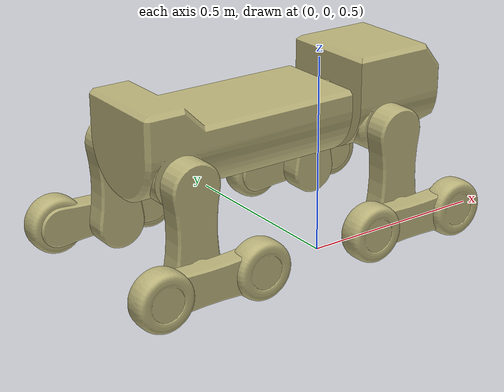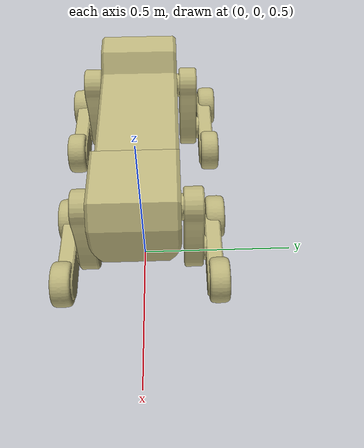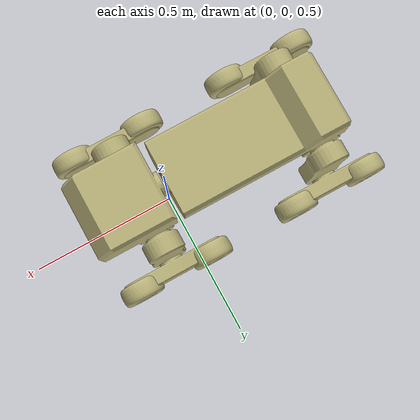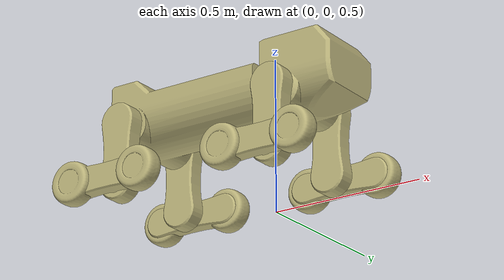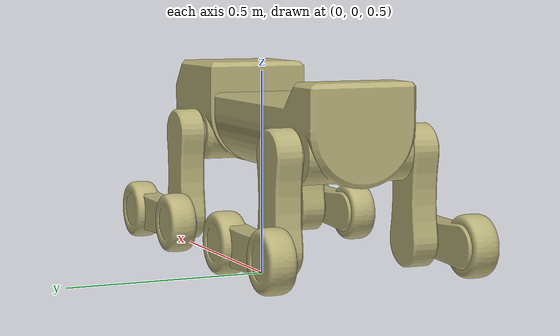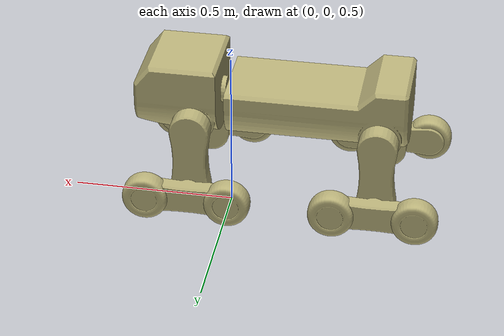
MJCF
<mujoco model="walter">

    <!--Defining the assets for the model-->
  <asset>
    <texture type="skybox" builtin="gradient" rgb1="1 1 1" rgb2=".63 .8 1" width="256" height="256"/>
    <mesh name = "thigh_mesh" file = "assets/Thigh.stl"/>
    <mesh name = "shin_mesh" file = "assets/Shin.stl"/>
    <mesh name = "wheel_mesh" file = "assets/Wheel.stl"/>
    <mesh name = "body_mesh" file = "assets/Body.stl"/>
    <mesh name = "head_mesh" file = "assets/Head.stl"/>
  </asset>

  <!--Defining default classes for components-->
  <default>
    <geom rgba="0.73 0.7 0.48 1"/>
    <!-- Default thigh class -->
    <default class="thigh">
        <geom type="mesh" mesh="thigh_mesh" mass = "3" />
    </default>

    <!-- Default hip class -->
    <default class = "hip">
        <joint armature = "0.02" damping = "2"/>
    </default>

    <!-- Default shin class -->
    <default class="shin">
        <geom type="mesh" mesh="shin_mesh" mass = "2"/>
    </default>

    <!-- Default knee class -->
    <default class = "knee">
        <joint armature = "0.02" damping = "2"/>
    </default>

    <!-- Default wheel class -->
    <default class="wheel">
        <geom type="mesh" mesh = "wheel_mesh" friction = "1.5 0.005 0.005" solref="0.1 0.5" mass = "3"/>
    </default>

    <!-- Default wheel joint class-->
    <default class = "wheel_joint">
        <joint type="hinge" axis="0 0 1" damping="0.08"/>
    </default>

    <!-- Body Class -->
    <default class="body">
        <geom type="mesh" mesh = "body_mesh" mass="35" />
    </default>

    <!-- Head Class -->
    <default class="head">
        <geom type="mesh" mesh = "head_mesh" mass = "17"/>
    </default>

    <!-- Default actuator classes -->
    <default class="knee_actuator">
        <motor />
    </default>

    <default class="hip_actuator">
        <motor />
    </default>

    <default class="wheel_actuator">
        <motor/>
    </default>

  </default>

  <!-- WALTER MODEL -->
    <worldbody>
        <light diffuse=".5 .5 .5" pos="0 0 3" dir="0 0 -1"/>
        <!-- Rear Body Section -->
        <body name="body" pos="0 0 0.9">
            <joint type="free"/>
            <geom class="body" />
            <!-- Add rear legs here -->

            <!-- Back left thigh -->
             <body name = "bl_thigh" pos = "-0.47 0.125 -0.055" quat = "0 0 1 1">
                <joint name="bl_hip" class = "hip" type="hinge" axis = "0 0 1" />
                <geom class="thigh"/>
                <!-- Back left shin -->
                <body name = "bl_shin" pos = "0 -0.2 0.076" >
                    <joint name="bl_knee" class = "knee" type="hinge" axis = "0 0 1"/>
                    <geom class="shin"/>
                    <!-- Back left wheels -->
                     <body name = "bl_wheel1" pos = "0.125 0 0.058">
                        <geom class="wheel"/>
                        <joint name="bl_wheel1_joint" class = "wheel_joint" type="hinge" axis="0 0 1"/>
                     </body>
                     <body name = "bl_wheel2" pos = "-0.125 0 0.058">
                        <geom class="wheel"/>
                        <joint name="bl_wheel2_joint" class = "wheel_joint" type="hinge" axis="0 0 1"/>
                     </body>
                </body>
             </body>

            <!-- Back right thigh -->
            <body name = "br_thigh" pos = "-0.47 -0.125 -0.055" quat = "1 1 0 0">
                <joint name="br_hip" class = "hip" type="hinge" axis = "0 0 1" />
                <geom class="thigh"/>
                <!-- Back right shin -->
                <body name = "br_shin" pos = "0 -0.2 0.076" >
                    <joint name="br_knee" class = "knee" type="hinge" axis = "0 0 1"/>
                    <geom class="shin"/>
                    <!-- Back right wheels -->
                     <body name = "br_wheel1" pos = "0.125 0 0.058">
                        <geom class="wheel"/>
                        <joint name="br_wheel1_joint" class = "wheel_joint" type="hinge" axis="0 0 1"/>
                     </body>
                     <body name = "br_wheel2" pos = "-0.125 0 0.058">
                        <geom class="wheel"/>
                        <joint name="br_wheel2_joint" class = "wheel_joint" type="hinge" axis="0 0 1"/>
                     </body>
                </body>
             </body>

            <!-- Front Body Section -->
            <body name="head" pos="0.01 0 0">
                <joint name="body_joint" type="hinge" axis = "1 0 0" stiffness = "0.2" range = "-30 30" solreflimit="1000 1" solimplimit=".95 .99 1e-3" damping = "20"/>
                <geom class = "head"/>

                <!-- Add front legs here -->
                 <!-- Front left thigh -->
                 <body name = "fl_thigh" pos = "0.085 0.125 -0.055" quat = "0 0 1 1">
                    <joint name="fl_hip" class = "hip" type="hinge" axis = "0 0 1" />
                    <geom class="thigh"/>
                    <!-- Back left shin -->
                    <body name = "fl_shin" pos = "0 -0.2 0.076" >
                        <joint name="fl_knee" class = "knee" type="hinge" axis = "0 0 1"/>
                        <geom class="shin"/>
                        <!-- Back left wheels -->
                         <body name = "fl_wheel1" pos = "0.125 0 0.058">
                            <geom class="wheel"/>
                            <joint name="fl_wheel1_joint" class = "wheel_joint" type="hinge" axis="0 0 1"/>
                         </body>
                         <body name = "fl_wheel2" pos = "-0.125 0 0.058">
                            <geom class="wheel"/>
                            <joint name="fl_wheel2_joint" class = "wheel_joint" type="hinge" axis="0 0 1"/>
                         </body>
                    </body>
                 </body>

                <!-- Front right thigh -->
                <body name = "fr_thigh" pos = "0.085 -0.125 -0.055" quat = "1 1 0 0">
                    <joint name="fr_hip" class = "hip" type="hinge" axis = "0 0 1" />
                    <geom class="thigh"/>
                    <!-- Back left shin -->
                    <body name = "fr_shin" pos = "0 -0.2 0.076" >
                        <joint name="fr_knee" class = "knee" type="hinge" axis = "0 0 1"/>
                        <geom class="shin"/>
                        <!-- Back left wheels -->
                            <body name = "fr_wheel1" pos = "0.125 0 0.058">
                                <geom class="wheel"/>
                                <joint name="fr_wheel1_joint" class = "wheel_joint" type="hinge" axis="0 0 1"/>
                            </body>
                            <body name = "fr_wheel2" pos = "-0.125 0 0.058">
                                <geom class="wheel"/>
                                <joint name="fr_wheel2_joint" class = "wheel_joint" type="hinge" axis="0 0 1"/>
                            </body>
                    </body>
                </body>
            </body>
            </body>
        </worldbody>

    <!-- Defining the actuators -->
    <actuator>
        <motor joint="fr_hip" class = "hip_actuator"/>
        <motor joint="fr_knee" class = "knee_actuator"/>
        <motor joint="fr_wheel1_joint" class = "wheel_actuator"/>
        <motor joint="fr_wheel2_joint" class = "wheel_actuator"/>
        <motor joint="fl_hip" class = "hip_actuator"/>
        <motor joint="fl_knee" class = "knee_actuator"/>
        <motor joint="fl_wheel1_joint" class = "wheel_actuator"/>
        <motor joint="fl_wheel2_joint" class = "wheel_actuator"/>
        <motor joint="br_hip" class = "hip_actuator"/>
        <motor joint="br_knee" class = "knee_actuator"/>
        <motor joint="br_wheel1_joint" class = "wheel_actuator"/>
        <motor joint="br_wheel2_joint" class = "wheel_actuator"/>
        <motor joint="bl_hip" class = "hip_actuator"/>
        <motor joint="bl_knee" class = "knee_actuator"/>
        <motor joint="bl_wheel1_joint" class = "wheel_actuator"/>
        <motor joint="bl_wheel2_joint" class = "wheel_actuator"/>
    </actuator>
</mujoco>
